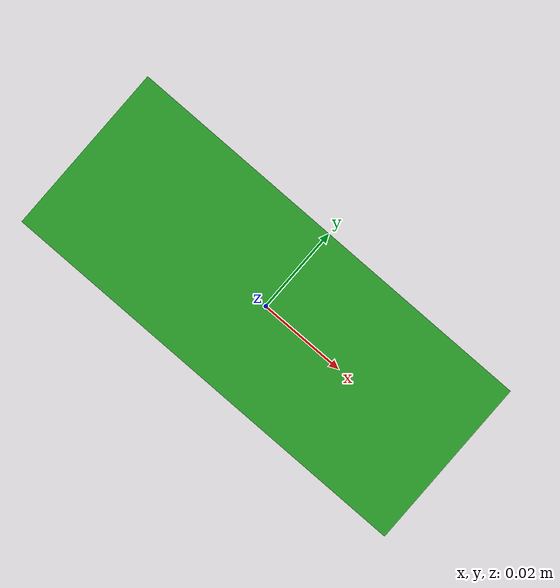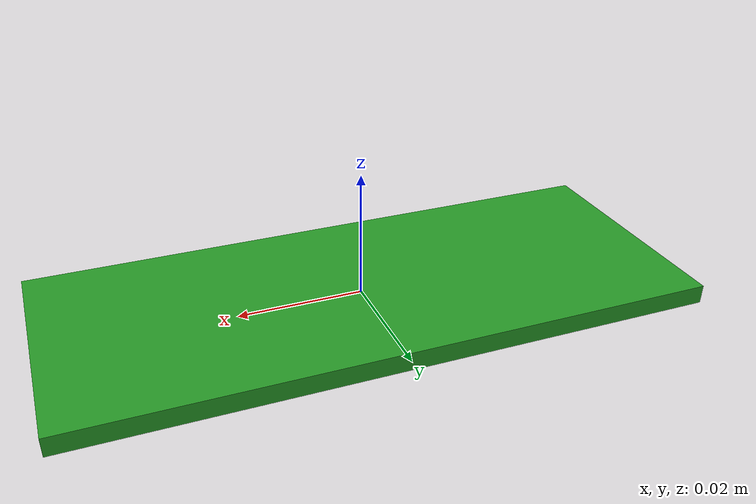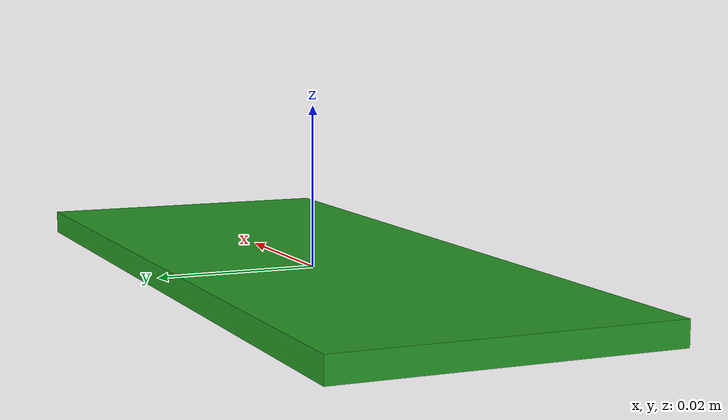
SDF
<?xml version="1.0" ?>
<sdf version="1.6">
  <model name="leaf_plate">
    <static>true</static>
    <link name="link">
      <collision name="collision">
        <geometry>
          <box>
            <size>0.10 0.04 0.003</size>
          </box>
        </geometry>
      </collision>
      <visual name="visual">
        <geometry>
          <box>
            <size>0.10 0.04 0.003</size>
          </box>
        </geometry>
        <material>
          <ambient>0.10 0.45 0.10 1</ambient>
          <diffuse>0.15 0.60 0.15 1</diffuse>
          <specular>0.02 0.02 0.02 1</specular>
        </material>
      </visual>
      <inertial>
        <mass>0.01</mass>
        <inertia>
          <ixx>0.000001</ixx>
          <iyy>0.000001</iyy>
          <izz>0.000001</izz>
          <ixy>0.0</ixy>
          <ixz>0.0</ixz>
          <iyz>0.0</iyz>
        </inertia>
      </inertial>
    </link>
  </model>
</sdf>
